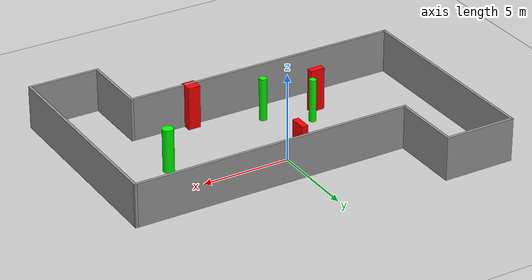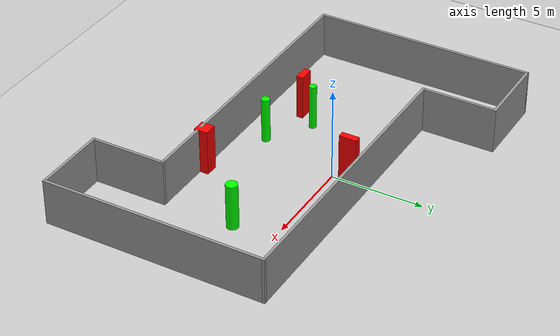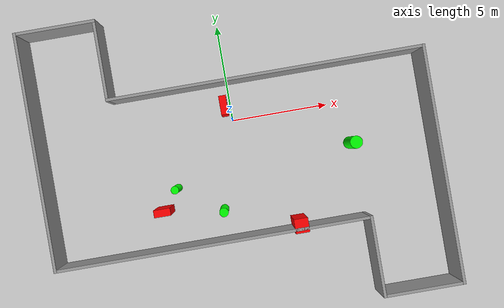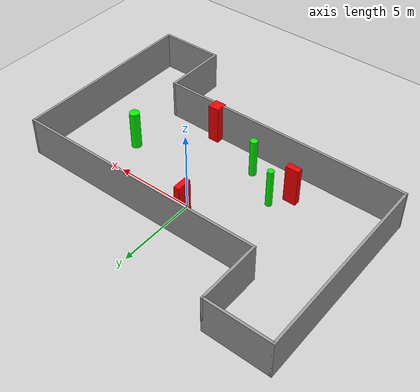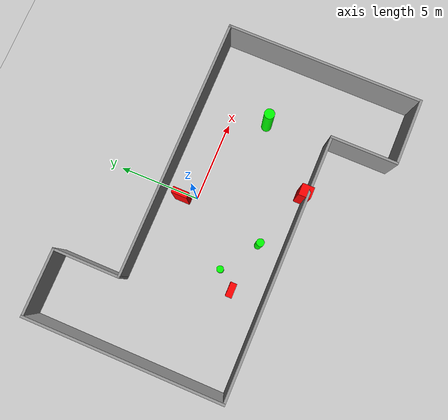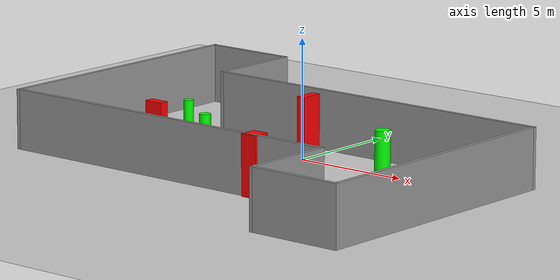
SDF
<sdf version="1.7">
 <world name="default">
  <light name="sun" type="directional">
   <pose>0 0 10 0 -0 0</pose>
   <diffuse>0.8 0.8 0.8 1</diffuse>
   <specular>0.2 0.2 0.2 1</specular>
   <attenuation>
    <range>1000</range>
    <constant>0.9</constant>
    <linear>0.01</linear>
    <quadratic>0.001</quadratic>
   </attenuation>
   <direction>-0.5 0.1 -0.9</direction>
   <spot><inner_angle>0</inner_angle><outer_angle>0</outer_angle><falloff>0</falloff></spot>
  </light>
  <model name="ground_plane">
   <static>1</static>
   <link name="link">
    <collision name="collision">
     <geometry><plane><normal>0 0 1</normal><size>100 100</size></plane></geometry>
     <surface>
      <contact><collide_bitmask>65535</collide_bitmask></contact>
      <friction><ode><mu>100</mu><mu2>50</mu2></ode></friction>
     </surface>
    </collision>
    <visual name="visual">
     <cast_shadows>0</cast_shadows>
     <geometry><plane><normal>0 0 1</normal><size>100 100</size></plane></geometry>
     <material>
      <script><uri>file://media/materials/scripts/gazebo.material</uri><name>Gazebo/Grey</name></script>
     </material>
    </visual>
   </link>
  </model>
  <gravity>0 0 -9.8</gravity>
  <magnetic_field>6e-06 2.3e-05 -4.2e-05</magnetic_field>
  <atmosphere type="adiabatic"/>
  <physics type="ode">
   <max_step_size>0.001</max_step_size>
   <real_time_factor>1</real_time_factor>
   <real_time_update_rate>1000</real_time_update_rate>
  </physics>
  <scene><ambient>0.4 0.4 0.4 1</ambient><background>0.7 0.7 0.7 1</background><shadows>1</shadows></scene>
  <spherical_coordinates>
   <surface_model>EARTH_WGS84</surface_model>
   <latitude_deg>0</latitude_deg>
   <longitude_deg>0</longitude_deg>
   <elevation>0</elevation>
   <heading_deg>0</heading_deg>
  </spherical_coordinates>
  <model name="my_base_walls">
   <link name="Wall_13">
    <collision name="Wall_13_Collision">
     <geometry><box><size>12.15 0.15 2.5</size></box></geometry>
     <pose>0 0 1.25 0 -0 0</pose>
    </collision>
    <visual name="Wall_13_Visual">
     <pose>0 0 1.25 0 -0 0</pose>
     <geometry><box><size>12.15 0.15 2.5</size></box></geometry>
     <material>
      <script><uri>file://media/materials/scripts/gazebo.material</uri><name>Gazebo/Grey</name></script>
      <ambient>1 1 1 1</ambient>
     </material>
     <meta><layer>0</layer></meta>
    </visual>
    <pose>10 -2 0 0 -0 1.5708</pose>
   </link>
   <link name="Wall_15">
    <collision name="Wall_15_Collision">
     <geometry><box><size>16.15 0.15 2.5</size></box></geometry>
     <pose>0 0 1.25 0 -0 0</pose>
    </collision>
    <visual name="Wall_15_Visual">
     <pose>0 0 1.25 0 -0 0</pose>
     <geometry><box><size>16.15 0.15 2.5</size></box></geometry>
     <material>
      <script><uri>file://media/materials/scripts/gazebo.material</uri><name>Gazebo/Grey</name></script>
      <ambient>1 1 1 1</ambient>
     </material>
     <meta><layer>0</layer></meta>
    </visual>
    <pose>2 4 0 0 -0 3.14159</pose>
   </link>
   <link name="Wall_17">
    <collision name="Wall_17_Collision">
     <geometry><box><size>4.15 0.15 2.5</size></box></geometry>
     <pose>0 0 1.25 0 -0 0</pose>
    </collision>
    <visual name="Wall_17_Visual">
     <pose>0 0 1.25 0 -0 0</pose>
     <geometry><box><size>4.15 0.15 2.5</size></box></geometry>
     <material>
      <script><uri>file://media/materials/scripts/gazebo.material</uri><name>Gazebo/Grey</name></script>
      <ambient>1 1 1 1</ambient>
     </material>
     <meta><layer>0</layer></meta>
    </visual>
    <pose>6 -6 0 0 -0 -1.5708</pose>
   </link>
   <link name="Wall_19">
    <collision name="Wall_19_Collision">
     <geometry><box><size>12.15 0.15 2.5</size></box></geometry>
     <pose>0 0 1.25 0 -0 0</pose>
    </collision>
    <visual name="Wall_19_Visual">
     <pose>0 0 1.25 0 -0 0</pose>
     <geometry><box><size>12.15 0.15 2.5</size></box></geometry>
     <material>
      <script><uri>file://media/materials/scripts/gazebo.material</uri><name>Gazebo/Grey</name></script>
      <ambient>1 1 1 1</ambient>
     </material>
     <meta><layer>0</layer></meta>
    </visual>
    <pose>-10 2 0 0 -0 1.5708</pose>
   </link>
   <link name="Wall_21">
    <collision name="Wall_21_Collision">
     <geometry><box><size>4.15 0.15 2.5</size></box></geometry>
     <pose>0 0 1.25 0 -0 0</pose>
    </collision>
    <visual name="Wall_21_Visual">
     <pose>0 0 1.25 0 -0 0</pose>
     <geometry><box><size>4.15 0.15 2.5</size></box></geometry>
     <material>
      <script><uri>file://media/materials/scripts/gazebo.material</uri><name>Gazebo/Grey</name></script>
      <ambient>1 1 1 1</ambient>
     </material>
     <meta><layer>0</layer></meta>
    </visual>
    <pose>-8 8 0 0 -0 0</pose>
   </link>
   <link name="Wall_23">
    <collision name="Wall_23_Collision">
     <geometry><box><size>4.15 0.15 2.5</size></box></geometry>
     <pose>0 0 1.25 0 -0 0</pose>
    </collision>
    <visual name="Wall_23_Visual">
     <pose>0 0 1.25 0 -0 0</pose>
     <geometry><box><size>4.15 0.15 2.5</size></box></geometry>
     <material>
      <script><uri>file://media/materials/scripts/gazebo.material</uri><name>Gazebo/Grey</name></script>
      <ambient>1 1 1 1</ambient>
     </material>
     <meta><layer>0</layer></meta>
    </visual>
    <pose>-6 6 0 0 -0 -1.5708</pose>
   </link>
   <link name="Wall_25">
    <collision name="Wall_25_Collision">
     <geometry><box><size>4.15 0.15 2.5</size></box></geometry>
     <pose>0 0 1.25 0 -0 0</pose>
    </collision>
    <visual name="Wall_25_Visual">
     <pose>0 0 1.25 0 -0 0</pose>
     <geometry><box><size>4.15 0.15 2.5</size></box></geometry>
     <material>
      <script><uri>file://media/materials/scripts/gazebo.material</uri><name>Gazebo/Grey</name></script>
      <ambient>1 1 1 1</ambient>
     </material>
     <meta><layer>0</layer></meta>
    </visual>
    <pose>8 -8 0 0 -0 0</pose>
   </link>
   <link name="Wall_9">
    <collision name="Wall_9_Collision">
     <geometry><box><size>16.15 0.15 2.5</size></box></geometry>
     <pose>0 0 1.25 0 -0 0</pose>
    </collision>
    <visual name="Wall_9_Visual">
     <pose>0 0 1.25 0 -0 0</pose>
     <geometry><box><size>16.15 0.15 2.5</size></box></geometry>
     <material>
      <script><uri>file://media/materials/scripts/gazebo.material</uri><name>Gazebo/Grey</name></script>
      <ambient>1 1 1 1</ambient>
     </material>
     <meta><layer>0</layer></meta>
    </visual>
    <pose>-2 -4 0 0 -0 3.14159</pose>
   </link>
   <static>1</static>
   <pose>-0 -2 0 0 -0 0</pose>
  </model>
  <model name="cylinder1">
   <static>1</static>
   <link name="link">
    <inertial>
     <mass>1</mass>
     <inertia><ixx>0.5</ixx><ixy>0</ixy><ixz>0</ixz><iyy>0.5</iyy><iyz>0</iyz><izz>1</izz></inertia>
    </inertial>
    <collision name="collision">
     <geometry><cylinder><radius>0.2294214964592053</radius><length>2.5</length></cylinder></geometry>
    </collision>
    <visual name="visual">
     <geometry><cylinder><radius>0.2294214964592053</radius><length>2.5</length></cylinder></geometry>
     <material>
      <ambient>0 1 0 1</ambient>
      <diffuse>0 1 0 1</diffuse>
      <specular>0.1 0.1 0.1 1</specular>
      <emissive>0 0 0 0</emissive>
     </material>
    </visual>
   </link>
   <pose>-1.206944462884806 -4.511280696639858 1.25 0 0 0</pose>
  </model>
  <model name="cylinder2">
   <static>1</static>
   <link name="link">
    <inertial>
     <mass>1</mass>
     <inertia><ixx>0.5</ixx><ixy>0</ixy><ixz>0</ixz><iyy>0.5</iyy><iyz>0</iyz><izz>1</izz></inertia>
    </inertial>
    <collision name="collision">
     <geometry><cylinder><radius>0.20126449469470076</radius><length>2.5</length></cylinder></geometry>
    </collision>
    <visual name="visual">
     <geometry><cylinder><radius>0.20126449469470076</radius><length>2.5</length></cylinder></geometry>
     <material>
      <ambient>0 1 0 1</ambient>
      <diffuse>0 1 0 1</diffuse>
      <specular>0.1 0.1 0.1 1</specular>
      <emissive>0 0 0 0</emissive>
     </material>
    </visual>
   </link>
   <pose>-3.4294798001908586 -3.006548484192934 1.25 0 0 0</pose>
  </model>
  <model name="cylinder3">
   <static>1</static>
   <link name="link">
    <inertial>
     <mass>1</mass>
     <inertia><ixx>0.5</ixx><ixy>0</ixy><ixz>0</ixz><iyy>0.5</iyy><iyz>0</iyz><izz>1</izz></inertia>
    </inertial>
    <collision name="collision">
     <geometry><cylinder><radius>0.3166132944098041</radius><length>2.5</length></cylinder></geometry>
    </collision>
    <visual name="visual">
     <geometry><cylinder><radius>0.3166132944098041</radius><length>2.5</length></cylinder></geometry>
     <material>
      <ambient>0 1 0 1</ambient>
      <diffuse>0 1 0 1</diffuse>
      <specular>0.1 0.1 0.1 1</specular>
      <emissive>0 0 0 0</emissive>
     </material>
    </visual>
   </link>
   <pose>5.888130500856235 -2.185213285467845 1.25 0 0 0</pose>
  </model>
  <model name="box1">
   <static>1</static>
   <link name="link">
    <inertial>
     <mass>1</mass>
     <inertia><ixx>0.083</ixx><ixy>0</ixy><ixz>0</ixz><iyy>0.083</iyy><iyz>0</iyz><izz>0.083</izz></inertia>
    </inertial>
    <collision name="collision">
     <geometry><box><size>0.3636800696013131 0.95817810139145 2.5</size></box></geometry>
    </collision>
    <visual name="visual">
     <geometry><box><size>0.3636800696013131 0.95817810139145 2.5</size></box></geometry>
     <material>
      <ambient>1 0 0 1</ambient>
      <diffuse>1 0 0 1</diffuse>
      <specular>0.1 0.1 0.1 1</specular>
      <emissive>0 0 0 0</emissive>
     </material>
    </visual>
    <sensor name="my_contact" type="contact">
     <contact><collision>box_collision</collision><topic>__default_topic__</topic></contact>
    </sensor>
   </link>
   <pose>-0.3228840255279355 0.765211245753112 1.25 0 0 0</pose>
  </model>
  <model name="box2">
   <static>1</static>
   <link name="link">
    <inertial>
     <mass>1</mass>
     <inertia><ixx>0.083</ixx><ixy>0</ixy><ixz>0</ixz><iyy>0.083</iyy><iyz>0</iyz><izz>0.083</izz></inertia>
    </inertial>
    <collision name="collision">
     <geometry><box><size>0.7129565055026654 0.730511974315176 2.5</size></box></geometry>
    </collision>
    <visual name="visual">
     <geometry><box><size>0.7129565055026654 0.730511974315176 2.5</size></box></geometry>
     <material>
      <ambient>1 0 0 1</ambient>
      <diffuse>1 0 0 1</diffuse>
      <specular>0.1 0.1 0.1 1</specular>
      <emissive>0 0 0 0</emissive>
     </material>
    </visual>
    <sensor name="my_contact" type="contact">
     <contact><collision>box_collision</collision><topic>__default_topic__</topic></contact>
    </sensor>
   </link>
   <pose>2.5067532533476165 -5.8253389680931065 1.25 0 0 0</pose>
  </model>
  <model name="box3">
   <static>1</static>
   <link name="link">
    <inertial>
     <mass>1</mass>
     <inertia><ixx>0.083</ixx><ixy>0</ixy><ixz>0</ixz><iyy>0.083</iyy><iyz>0</iyz><izz>0.083</izz></inertia>
    </inertial>
    <collision name="collision">
     <geometry><box><size>0.8396110978810929 0.3778640407159728 2.5</size></box></geometry>
    </collision>
    <visual name="visual">
     <geometry><box><size>0.8396110978810929 0.3778640407159728 2.5</size></box></geometry>
     <material>
      <ambient>1 0 0 1</ambient>
      <diffuse>1 0 0 1</diffuse>
      <specular>0.1 0.1 0.1 1</specular>
      <emissive>0 0 0 0</emissive>
     </material>
    </visual>
    <sensor name="my_contact" type="contact">
     <contact><collision>box_collision</collision><topic>__default_topic__</topic></contact>
    </sensor>
   </link>
   <pose>-4.250383944977257 -4.01746409191458 1.25 0 0 0</pose>
  </model>
 </world>
</sdf>
